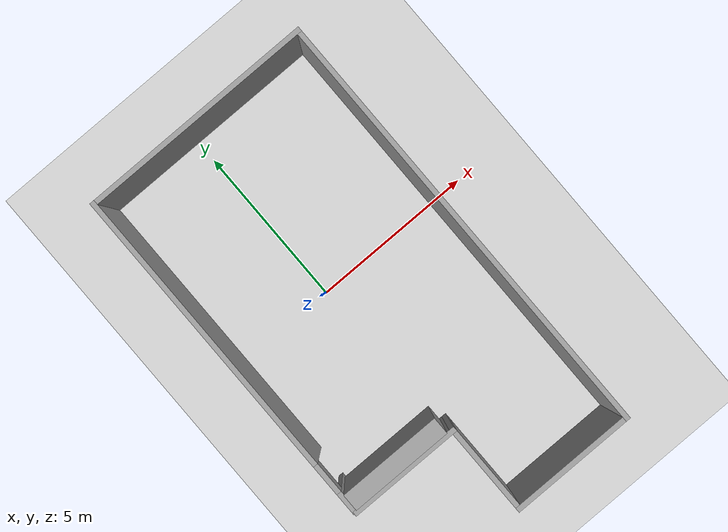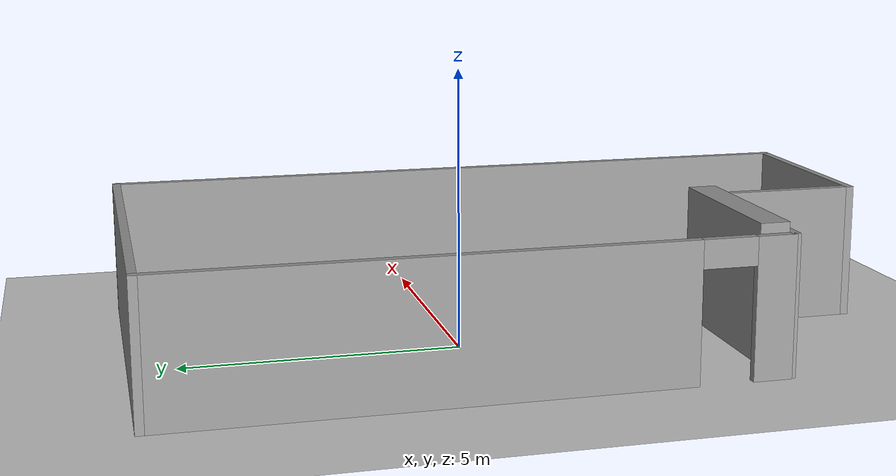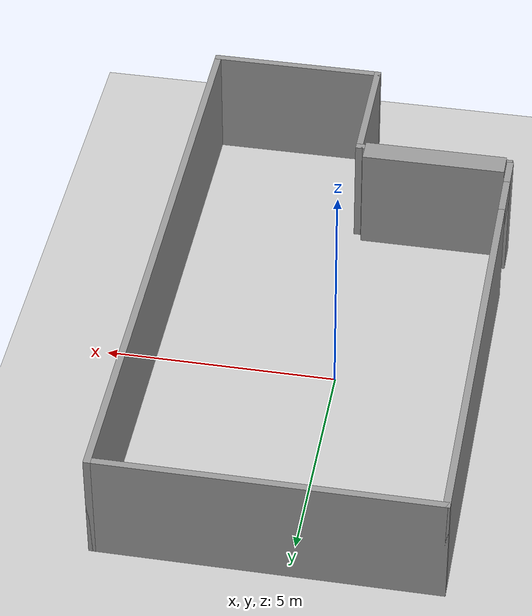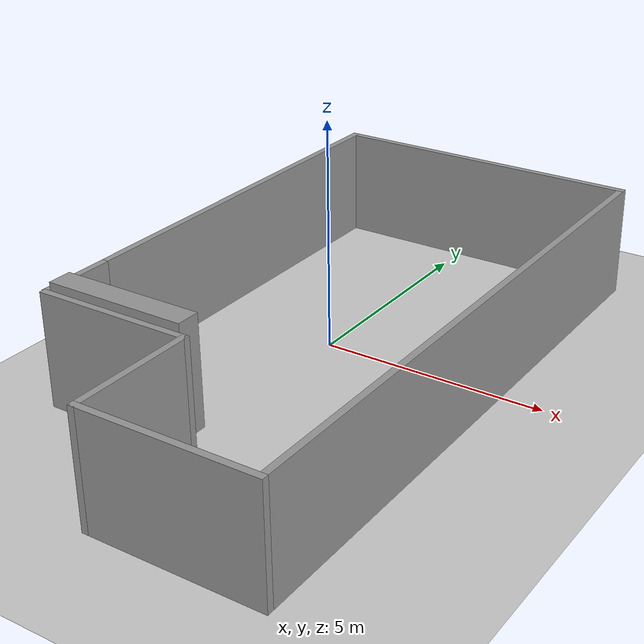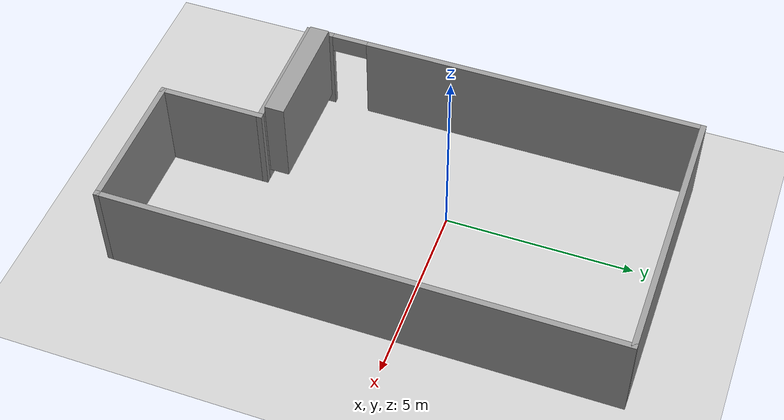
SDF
<sdf version="1.6">
 <world name="default">
  <light name="sun" type="directional">
   <pose>0 0 10 0 -0 0</pose>
   <diffuse>0.8 0.8 0.8 1</diffuse>
   <specular>0.1 0.1 0.1 1</specular>
   <attenuation>
    <range>1000</range>
    <constant>0.9</constant>
    <linear>0.01</linear>
    <quadratic>0.001</quadratic>
   </attenuation>
   <direction>-0.5 0.5 -1</direction>
  </light>
  <model name="ground_plane">
   <static>1</static>
   <link name="link">
    <collision name="collision">
     <geometry><plane><normal>0 0 1</normal><size>100 100</size></plane></geometry>
     <surface><friction><ode><mu>100</mu><mu2>50</mu2></ode></friction></surface>
    </collision>
    <visual name="visual">
     <cast_shadows>0</cast_shadows>
     <geometry><plane><normal>0 0 1</normal><size>100 100</size></plane></geometry>
     <material>
      <script><uri>file://media/materials/scripts/gazebo.material</uri><name>Gazebo/Grey</name></script>
     </material>
    </visual>
   </link>
  </model>
  <gravity>0 0 -9.8</gravity>
  <magnetic_field>6e-06 2.3e-05 -4.2e-05</magnetic_field>
  <atmosphere type="adiabatic"/>
  <physics name="default_physics" default="0" type="ode">
   <max_step_size>0.001</max_step_size>
   <real_time_factor>1</real_time_factor>
   <real_time_update_rate>1000</real_time_update_rate>
  </physics>
  <scene><ambient>0.4 0.4 0.4 1</ambient><background>0.7 0.7 0.7 1</background><shadows>1</shadows></scene>
  <spherical_coordinates>
   <surface_model>EARTH_WGS84</surface_model>
   <latitude_deg>0</latitude_deg>
   <longitude_deg>0</longitude_deg>
   <elevation>0</elevation>
   <heading_deg>0</heading_deg>
  </spherical_coordinates>
  <model name="CLF_0">
   <pose>0.46218 -0.965731 0 0 -0 0</pose>
   <link name="Wall_0">
    <pose>-3.547 1.394 0 0 0 -1.5708</pose>
    <visual name="Wall_0_Visual_0">
     <pose>-0.827428 0 1.25 0 -0 0</pose>
     <geometry><box><size>9.14514 0.15 2.5</size></box></geometry>
     <material>
      <script><uri>file://media/materials/scripts/gazebo.material</uri><name>Gazebo/Grey</name></script>
      <ambient>1 1 1 1</ambient>
     </material>
    </visual>
    <collision name="Wall_0_Collision_0">
     <geometry><box><size>9.14514 0.15 2.5</size></box></geometry>
     <pose>-0.827428 0 1.25 0 -0 0</pose>
    </collision>
    <visual name="Wall_0_Visual_1">
     <pose>5.05257 0 1.25 0 -0 0</pose>
     <geometry><box><size>0.694856 0.15 2.5</size></box></geometry>
     <material>
      <script><uri>file://media/materials/scripts/gazebo.material</uri><name>Gazebo/Grey</name></script>
      <ambient>1 1 1 1</ambient>
     </material>
    </visual>
    <collision name="Wall_0_Collision_1">
     <geometry><box><size>0.694856 0.15 2.5</size></box></geometry>
     <pose>5.05257 0 1.25 0 -0 0</pose>
    </collision>
    <visual name="Wall_0_Visual_2">
     <pose>4.22514 0 2.25 0 -0 0</pose>
     <geometry><box><size>0.96 0.15 0.5</size></box></geometry>
     <material>
      <script><uri>file://media/materials/scripts/gazebo.material</uri><name>Gazebo/Grey</name></script>
      <ambient>1 1 1 1</ambient>
     </material>
    </visual>
    <collision name="Wall_0_Collision_2">
     <geometry><box><size>0.96 0.15 0.5</size></box></geometry>
     <pose>4.22514 0 2.25 0 -0 0</pose>
    </collision>
   </link>
   <link name="Wall_10">
    <collision name="Wall_10_Collision">
     <geometry><box><size>3.5 0.15 2.5</size></box></geometry>
     <pose>0 0 1.25 0 -0 0</pose>
    </collision>
    <visual name="Wall_10_Visual">
     <pose>0 0 1.25 0 -0 0</pose>
     <geometry><box><size>3.5 0.15 2.5</size></box></geometry>
     <material>
      <script><uri>file://media/materials/scripts/gazebo.material</uri><name>Gazebo/Grey</name></script>
      <ambient>1 1 1 1</ambient>
     </material>
    </visual>
    <pose>-1.848 -4.005 0 0 -0 3.14159</pose>
   </link>
   <link name="Wall_2">
    <collision name="Wall_2_Collision">
     <geometry><box><size>7.244 0.15 2.5</size></box></geometry>
     <pose>0 0 1.25 0 -0 0</pose>
    </collision>
    <visual name="Wall_2_Visual">
     <pose>0 0 1.25 0 -0 0</pose>
     <geometry><box><size>7.244 0.15 2.5</size></box></geometry>
     <material>
      <script><uri>file://media/materials/scripts/gazebo.material</uri><name>Gazebo/Grey</name></script>
      <ambient>1 1 1 1</ambient>
     </material>
    </visual>
    <pose>0 6.719 0 0 -0 0</pose>
   </link>
   <link name="Wall_4">
    <collision name="Wall_4_Collision">
     <geometry><box><size>13.588 0.15 2.5</size></box></geometry>
     <pose>0 0 1.25 0 -0 0</pose>
    </collision>
    <visual name="Wall_4_Visual">
     <pose>0 0 1.25 0 -0 0</pose>
     <geometry><box><size>13.588 0.15 2.5</size></box></geometry>
     <material>
      <script><uri>file://media/materials/scripts/gazebo.material</uri><name>Gazebo/Grey</name></script>
      <ambient>1 1 1 1</ambient>
     </material>
    </visual>
    <pose>3.547 0 0 0 0 -1.5708</pose>
   </link>
   <link name="Wall_6">
    <collision name="Wall_6_Collision">
     <geometry><box><size>3.87 0.15 2.5</size></box></geometry>
     <pose>0 0 1.25 0 -0 0</pose>
    </collision>
    <visual name="Wall_6_Visual">
     <pose>0 0 1.25 0 -0 0</pose>
     <geometry><box><size>3.87 0.15 2.5</size></box></geometry>
     <material>
      <script><uri>file://media/materials/scripts/gazebo.material</uri><name>Gazebo/Grey</name></script>
      <ambient>1 1 1 1</ambient>
     </material>
    </visual>
    <pose>1.687 -6.719 0 0 -0 3.14159</pose>
   </link>
   <link name="Wall_8">
    <collision name="Wall_8_Collision">
     <geometry><box><size>2.864 0.15 2.5</size></box></geometry>
     <pose>0 0 1.25 0 -0 0</pose>
    </collision>
    <visual name="Wall_8_Visual">
     <pose>0 0 1.25 0 -0 0</pose>
     <geometry><box><size>2.864 0.15 2.5</size></box></geometry>
     <material>
      <script><uri>file://media/materials/scripts/gazebo.material</uri><name>Gazebo/Grey</name></script>
      <ambient>1 1 1 1</ambient>
     </material>
    </visual>
    <pose>-0.173 -5.362 0 0 -0 1.5708</pose>
   </link>
   <static>1</static>
  </model>
  <model name="clf_cabinet_1">
   <link name="link">
    <inertial>
     <mass>1</mass>
     <inertia>
      <ixx>0.166667</ixx>
      <ixy>0</ixy>
      <ixz>0</ixz>
      <iyy>0.166667</iyy>
      <iyz>0</iyz>
      <izz>0.166667</izz>
     </inertia>
    </inertial>
    <visual name="visual">
     <geometry><box><size>3.13719 0.522097 2.4</size></box></geometry>
     <material>
      <script><name>Gazebo/Grey</name><uri>file://media/materials/scripts/gazebo.material</uri></script>
      <ambient>0.3 0.3 0.3 1</ambient>
      <diffuse>0.7 0.7 0.7 1</diffuse>
      <specular>0.01 0.01 0.01 1</specular>
      <emissive>0 0 0 1</emissive>
     </material>
    </visual>
    <collision name="collision">
     <geometry><box><size>3.13719 0.522097 2.4</size></box></geometry>
     <surface>
      <friction>
       <ode><mu>1</mu><mu2>1</mu2><fdir1>0 0 0</fdir1><slip1>0</slip1><slip2>0</slip2></ode>
       <torsional>
        <coefficient>1</coefficient>
        <patch_radius>0</patch_radius>
        <surface_radius>0</surface_radius>
        <use_patch_radius>1</use_patch_radius>
        <ode><slip>0</slip></ode>
       </torsional>
      </friction>
      <bounce><restitution_coefficient>0</restitution_coefficient><threshold>1e+06</threshold></bounce>
      <contact>
       <collide_without_contact>0</collide_without_contact>
       <collide_without_contact_bitmask>1</collide_without_contact_bitmask>
       <collide_bitmask>1</collide_bitmask>
       <ode>
        <soft_cfm>0</soft_cfm>
        <soft_erp>0.2</soft_erp>
        <kp>1e+13</kp>
        <kd>1</kd>
        <max_vel>0.01</max_vel>
        <min_depth>0</min_depth>
       </ode>
       <bullet>
        <split_impulse>1</split_impulse>
        <split_impulse_penetration_threshold>-0.01</split_impulse_penetration_threshold>
        <soft_cfm>0</soft_cfm>
        <soft_erp>0.2</soft_erp>
        <kp>1e+13</kp>
        <kd>1</kd>
       </bullet>
      </contact>
     </surface>
    </collision>
   </link>
   <static>0</static>
   <pose>-1.43795 -4.63443 1.47772 -1e-06 -3e-06 -7.1e-05</pose>
  </model>
 </world>
</sdf>
